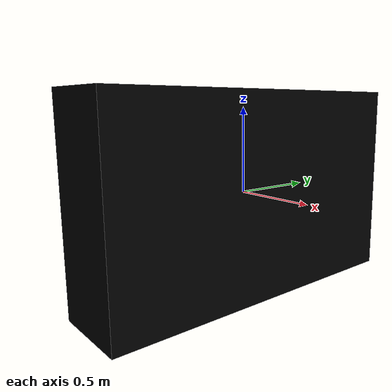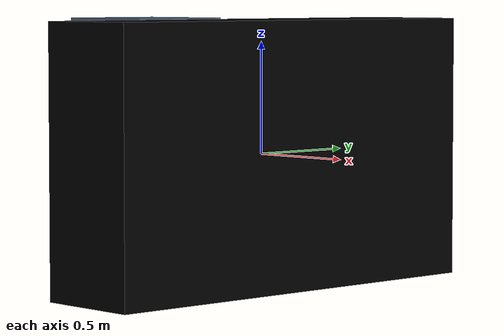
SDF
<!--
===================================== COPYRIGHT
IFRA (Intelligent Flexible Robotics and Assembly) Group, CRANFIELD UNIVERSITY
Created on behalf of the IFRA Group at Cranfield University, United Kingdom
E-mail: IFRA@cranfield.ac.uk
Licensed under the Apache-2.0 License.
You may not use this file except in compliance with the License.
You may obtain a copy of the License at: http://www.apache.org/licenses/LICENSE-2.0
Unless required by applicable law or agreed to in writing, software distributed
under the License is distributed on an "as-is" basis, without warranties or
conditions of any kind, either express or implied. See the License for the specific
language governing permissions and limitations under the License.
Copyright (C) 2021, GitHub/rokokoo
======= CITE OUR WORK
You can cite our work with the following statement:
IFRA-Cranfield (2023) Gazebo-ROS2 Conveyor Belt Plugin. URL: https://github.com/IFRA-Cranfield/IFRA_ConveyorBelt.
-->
<?xml version="1.0" ?>

<sdf version="1.4">

    <model name="conveyor_belt">

        <model name="stand">
            <static>true</static>
            <pose>-0.8 0 0 0 0 0</pose>

            <link name="stand visual">
                <inertial>
                    <mass>100.0</mass>
                    <inertia>                        <!-- inertias are tricky to compute -->
                        <!-- http://gazebosim.org/tutorials?tut=inertia&cat=build_robot -->
                        <ixx>45.152</ixx>                        <!-- for a box: ixx = 0.083 * mass * (y*y + z*z) -->
                        <ixy>0.0</ixy>                        <!-- for a box: ixy = 0 -->
                        <ixz>0.0</ixz>                        <!-- for a box: ixz = 0 -->
                        <iyy>14.027</iyy>                        <!-- for a box: iyy = 0.083 * mass * (x*x + z*z) -->
                        <iyz>0.0</iyz>                        <!-- for a box: iyz = 0 -->
                        <izz>35.275</izz>                        <!-- for a box: izz = 0.083 * mass * (x*x + y*y) -->
                    </inertia>
                </inertial>
                <collision name="standc">
                    <geometry>
                        <box>
                            <size>0.5 0.5 1.2</size>
                        </box>
                    </geometry>
                </collision>
                <visual name="standv">
                    <geometry>
                        <box>
                            <size>0.5 0.5 1.2</size>
                        </box>
                    </geometry>
                    <material>
                        <ambient>0.1 0.1 0.1 0.1</ambient>
                        <diffuse>0.3 0.4 0.5 1</diffuse>
                        <specular>0.2 0.2 0.2 64</specular>
                        <emissive>0.1 0 0.1 1</emissive>
                    </material>
                </visual>
            </link>
        </model>

        <model name="conveyorbelt_fixed">

            <static>true</static>
            <link name="belt_visual">
                <inertial>
                    <mass>100.0</mass>
                    <inertia>                        <!-- inertias are tricky to compute -->
                        <!-- http://gazebosim.org/tutorials?tut=inertia&cat=build_robot -->
                        <ixx>45.152</ixx>                        <!-- for a box: ixx = 0.083 * mass * (y*y + z*z) -->
                        <ixy>0.0</ixy>                        <!-- for a box: ixy = 0 -->
                        <ixz>0.0</ixz>                        <!-- for a box: ixz = 0 -->
                        <iyy>14.027</iyy>                        <!-- for a box: iyy = 0.083 * mass * (x*x + z*z) -->
                        <iyz>0.0</iyz>                        <!-- for a box: iyz = 0 -->
                        <izz>35.275</izz>                        <!-- for a box: izz = 0.083 * mass * (x*x + y*y) -->
                    </inertia>
                </inertial>
                <collision name="collision">
                    <geometry>
                        <box>
                            <size>0.5 2 1.2</size>
                        </box>
                    </geometry>
                </collision>
                <visual name="visual">
                    <geometry>
                        <box>
                            <size>0.5 2 1.2</size>
                        </box>
                    </geometry>
                    <material>
                        <ambient>0 0 0 0</ambient>
                        <diffuse>0 0 0 1</diffuse>
                        <specular>0.2 0.2 0.2 64</specular>
                        <emissive>0.1 0 0.1 1</emissive>
                    </material>
                </visual>
            </link>
        </model>

        <model name="conveyorbelt_moving">

            <allow_auto_disable>0</allow_auto_disable>
            <static>false</static>

            <pose>0 0 0.6 0 0 0.0</pose>

            <link name="belt_moving">
                <inertial>
                    <mass>100.0</mass>
                    <inertia>
                        <ixx>0.0</ixx>
                        <ixy>0.0</ixy>
                        <ixz>0.0</ixz>
                        <iyy>0.0</iyy>
                        <iyz>0.0</iyz>
                        <izz>0.0</izz>
                    </inertia>
                </inertial>
                <collision name="belt_collision">
                    <geometry>
                        <box>
                            <size>0.425 2 0.00001</size>
                        </box>
                    </geometry>
                    <surface>
                        <friction>
                            <ode>
                                <mu>100.0</mu>
                                <mu2>100.0</mu2>
                            </ode>
                            <torsional>
                                <coefficient>1000.0</coefficient>
                                <patch_radius>0.1</patch_radius>
                            </torsional>
                        </friction>
                    </surface>
                </collision>

            </link>

        </model>

        <joint name="belt_joint" type="prismatic">
            <parent>conveyorbelt_fixed::belt_visual</parent>
            <child>conveyorbelt_moving::belt_moving</child>
            <axis>
                <xyz>0 1 0</xyz>
                <limit>
                    <lower>0.0</lower>
                    <upper>0.01</upper>
                </limit>
            </axis>
        </joint>

        <plugin name="ros2_conveyorbelt_plugin" filename="libros2_conveyorbelt_plugin.so">
            <ros>
                <namespace></namespace>
            </ros>
            <max_velocity>1.0</max_velocity>
            <publish_rate>1000</publish_rate>
        </plugin>

    </model>

</sdf>
